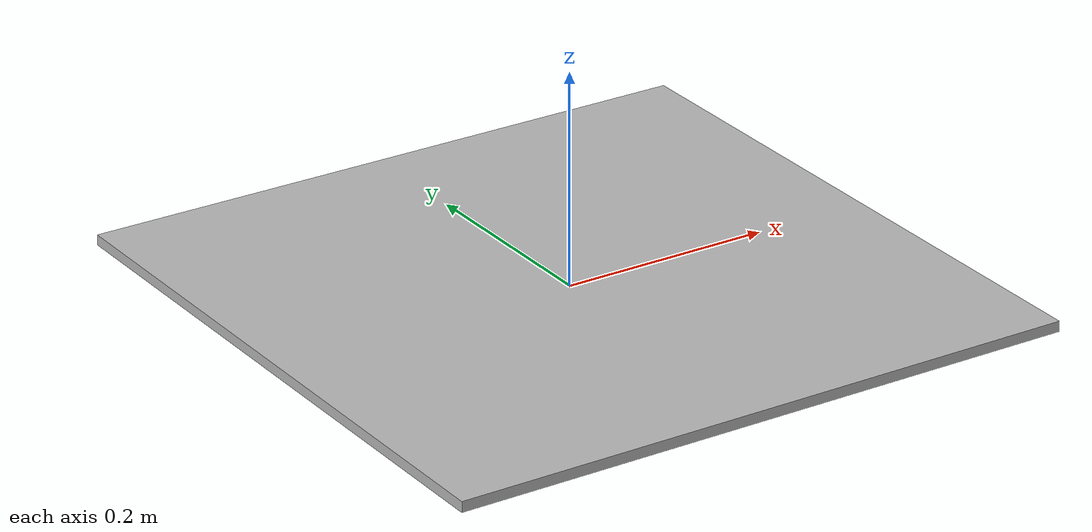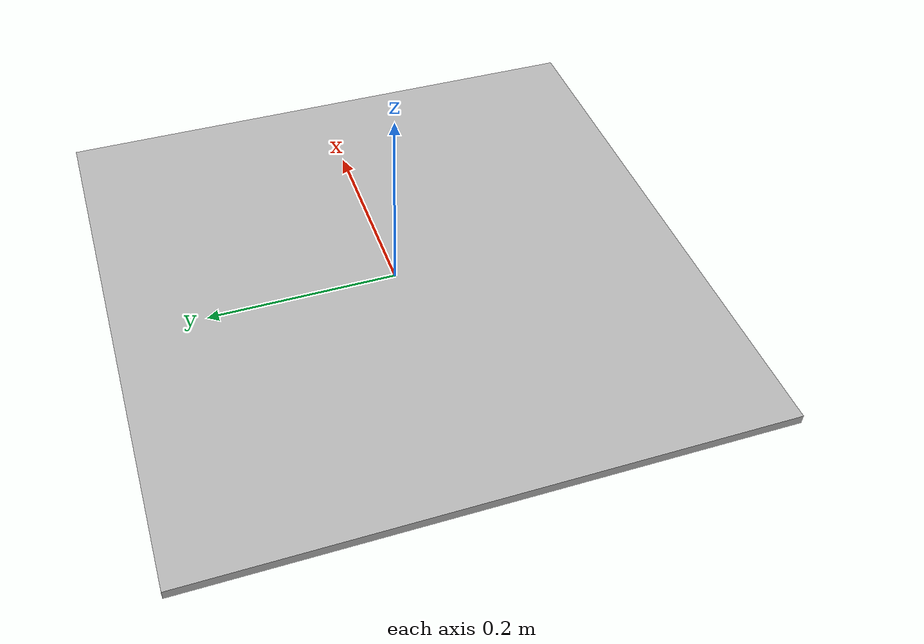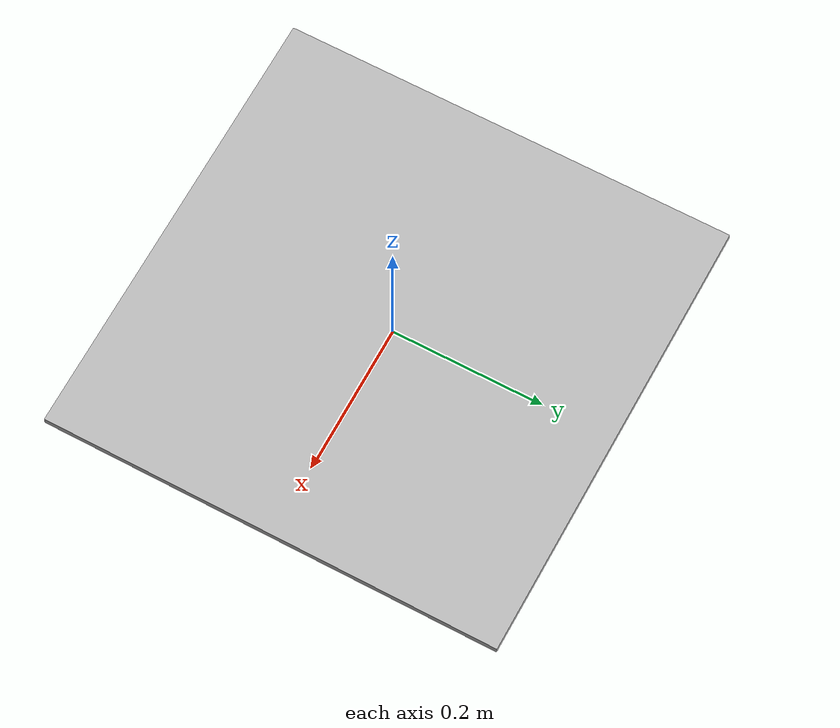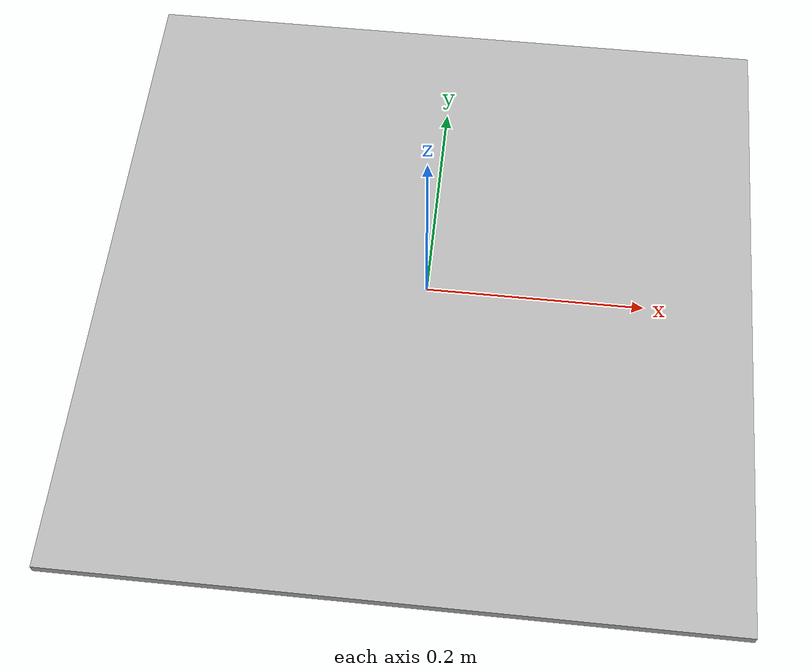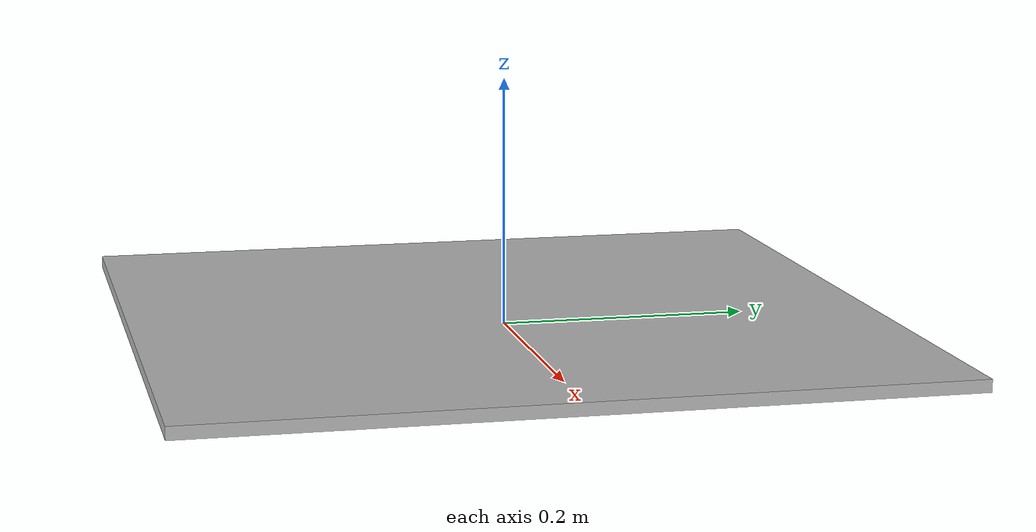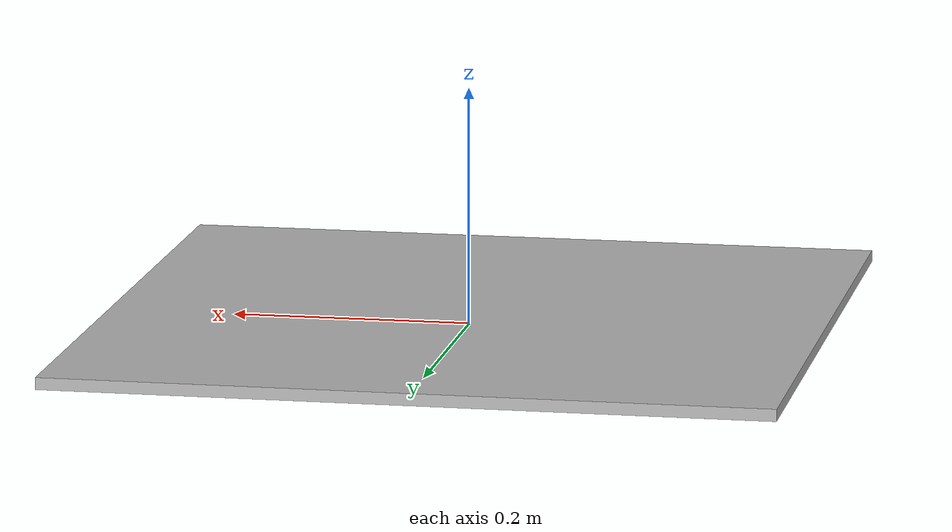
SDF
<?xml version="1.0"?>
<sdf version="1.9">
  <model name="imav2026_landing_platform">
    <static>false</static>

    <link name="landing_platform_link">
      <pose>0 0 0 0 0 0</pose>

      <visual name="landing_platform_visual">
        <pose>0 0 0 0 0 0</pose>
        <geometry>
          <mesh>
            <uri>model://imav2026_landing_platform/meshes/landing_platform_v2.dae</uri>
          </mesh>
        </geometry>
      </visual>

      <collision name="landing_platform_collision">
        <pose>0 0 0 0 0 0</pose>
        <geometry>
          <mesh>
            <uri>model://imav2026_landing_platform/meshes/landing_platform_v2.dae</uri>
          </mesh>
        </geometry>
      </collision>
    </link>

  </model>
</sdf>
